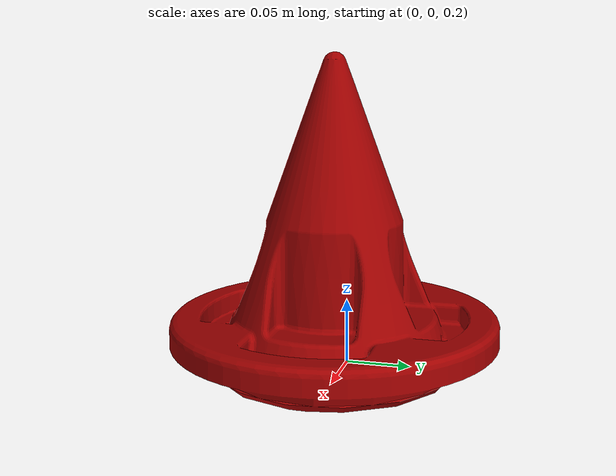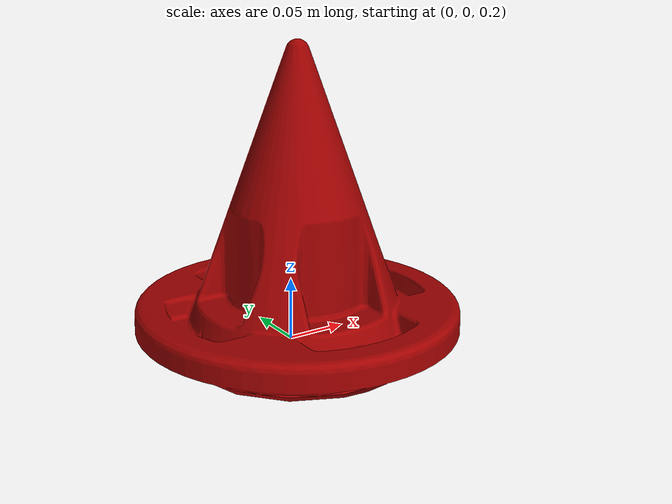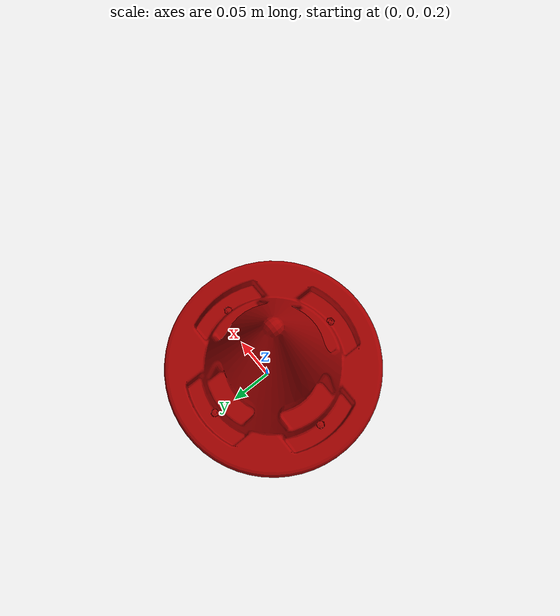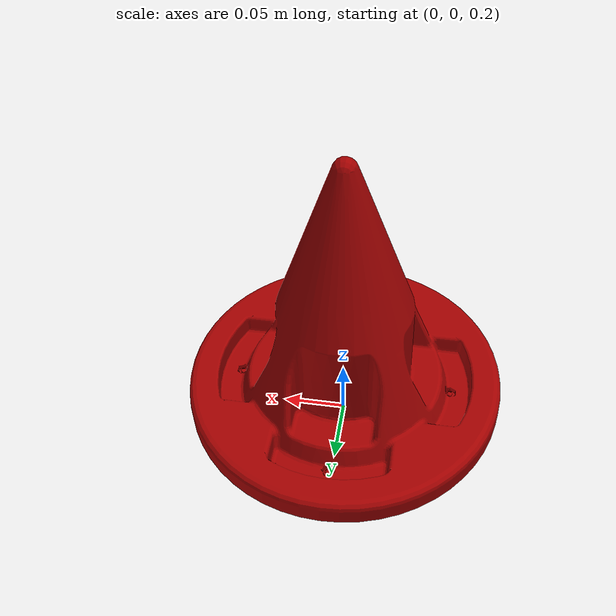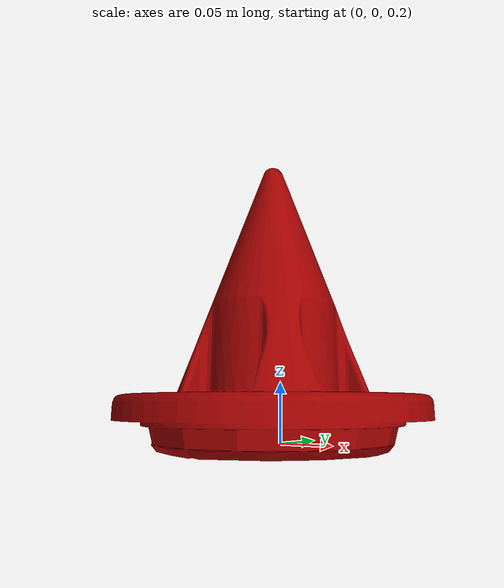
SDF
<?xml version="1.0"?>
<sdf version="1.5">
    <model name="Red Mobile Goal">
      <pose>0 0 0.2  0 0 0</pose>
 <mu1>0.8</mu1>
      <mass value="1.68"/>
  <maxVel>0.0</maxVel>
  <minDepth>0.001</minDepth>
      <static>false</static>
    <inertial>

      <pose>0 0 0.2  0 0 0</pose>
      <inertia
        ixx="1.0" ixy="0.0" ixz="0.0"
        iyy="1.0" iyz="0.0"
        izz="1.0"/>
    </inertial>
      <link name="body">

        <visual name="visual">
          <geometry>
            <mesh><uri>file://catkin_ws/src/gazebosim/gazeboSimulation/meshes/RedMobileGoal.dae</uri></mesh>
          </geometry>
        </visual>
	<collision name = "collision">
	<geometry>
<mesh><uri>file://catkin_ws/src/gazebosim/gazeboSimulation/Collisions/MobileGoalCollision.dae</uri></mesh>
	</geometry>
       </collision>
      </link>
    </model>
</sdf>
